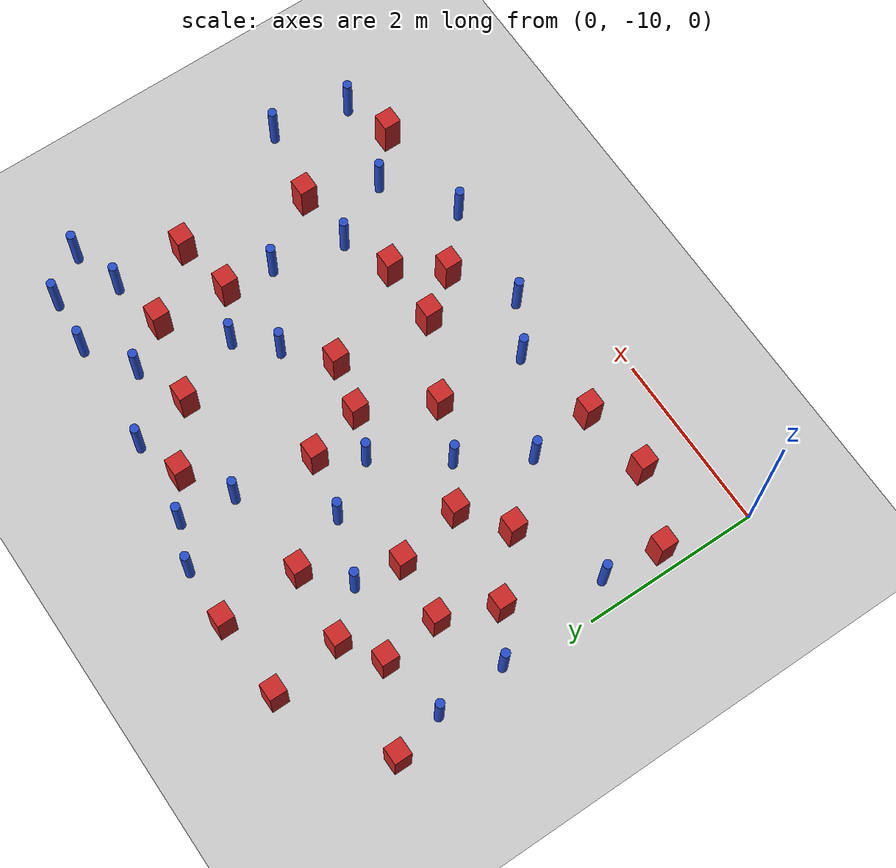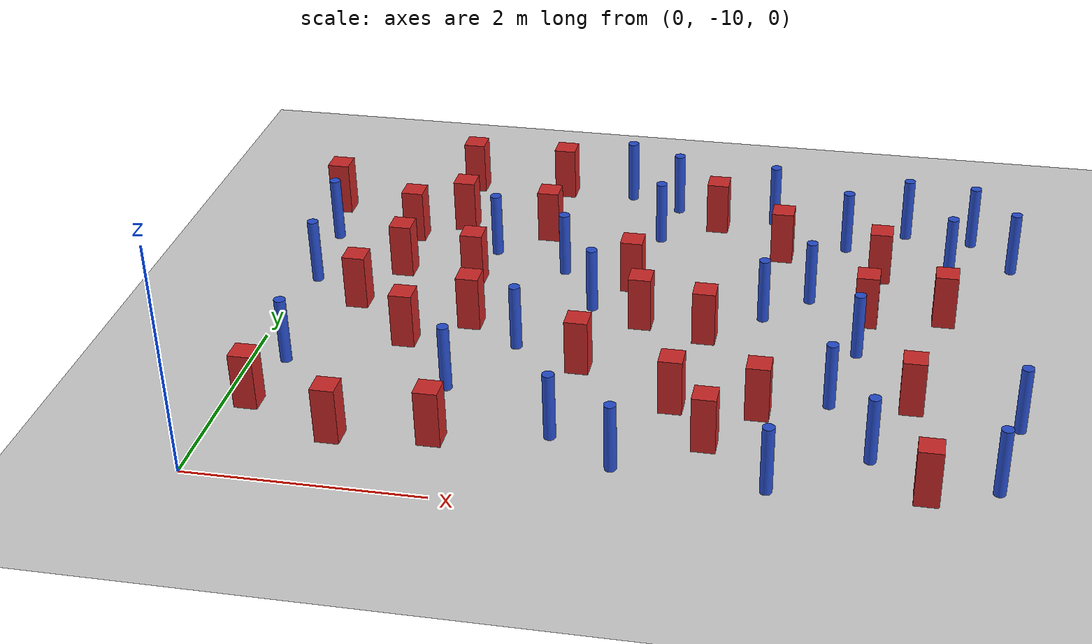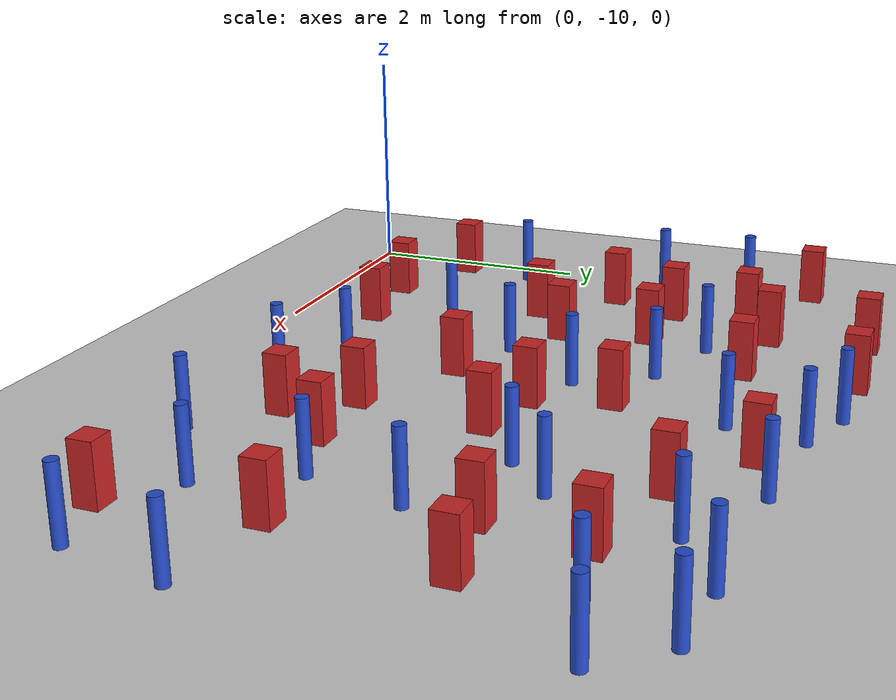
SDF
<sdf version="1.6">
 <world name="default">
  <model name="ground_plane">
   <static>1</static>
   <link name="link">
    <collision name="collision">
     <geometry><plane><normal>0 0 1</normal><size>100 100</size></plane></geometry>
     <surface><friction><ode><mu>100</mu><mu2>50</mu2></ode></friction></surface>
    </collision>
    <visual name="visual">
     <cast_shadows>0</cast_shadows>
     <geometry><plane><normal>0 0 1</normal><size>100 100</size></plane></geometry>
     <material>
      <ambient>1.0 1.0 1.0 1.0</ambient>
      <diffuse>0.8 0.8 0.8 1.0</diffuse>
      <specular>0.01 0.01 0.01 1.000000</specular>
     </material>
    </visual>
   </link>
  </model>
  <model name="pole_obstacle4">
   <static>true</static>
   <pose>2.17905710178 -7.80238165837 7.38925637345e-09 -8.47170692798e-08 1.24976765033e-08 -1.74513093019e-07</pose>
   <link name="link">
    <pose>0 0 0.3 0 -0 0</pose>
    <inertial>
     <mass>1</mass>
     <inertia><ixx>0.145833</ixx><ixy>0</ixy><ixz>0</ixz><iyy>0.145833</iyy><iyz>0</iyz><izz>0.125</izz></inertia>
    </inertial>
    <collision name="collision">
     <geometry><cylinder><radius>0.05</radius><length>.6</length></cylinder></geometry>
    </collision>
    <visual name="visual">
     <geometry><cylinder><radius>0.05</radius><length>.6</length></cylinder></geometry>
     <material>
      <script><name>Gazebo/Blue</name><uri>file://media/materials/scripts/gazebo.material</uri></script>
     </material>
    </visual>
   </link>
  </model>
  <model name="square_post_obstacle4">
   <static>true</static>
   <pose>-0.0634980253902 -5.59062837744 1.91545236811e-07 -7.35059704564e-06 1.12565212e-07 2.39332434364e-05</pose>
   <link name="link">
    <pose>0 0 0.25 0 -0 0</pose>
    <inertial>
     <mass>100</mass>
     <inertia>
      <ixx>0.166667</ixx>
      <ixy>0</ixy>
      <ixz>0</ixz>
      <iyy>0.166667</iyy>
      <iyz>0</iyz>
      <izz>0.166667</izz>
     </inertia>
    </inertial>
    <collision name="collision"><geometry><box><size>.2 .2 .5</size></box></geometry></collision>
    <visual name="visual">
     <geometry><box><size>.2 .2 .5</size></box></geometry>
     <material>
      <script><name>Gazebo/Red</name><uri>file://media/materials/scripts/gazebo.material</uri></script>
     </material>
    </visual>
   </link>
  </model>
  <model name="square_post_obstacle9">
   <static>true</static>
   <pose>1.21343042922 -7.86855493327 1.91545236811e-07 -7.35059704564e-06 1.12565212e-07 2.39332434364e-05</pose>
   <link name="link">
    <pose>0 0 0.25 0 -0 0</pose>
    <inertial>
     <mass>100</mass>
     <inertia>
      <ixx>0.166667</ixx>
      <ixy>0</ixy>
      <ixz>0</ixz>
      <iyy>0.166667</iyy>
      <iyz>0</iyz>
      <izz>0.166667</izz>
     </inertia>
    </inertial>
    <collision name="collision"><geometry><box><size>.2 .2 .5</size></box></geometry></collision>
    <visual name="visual">
     <geometry><box><size>.2 .2 .5</size></box></geometry>
     <material>
      <script><name>Gazebo/Red</name><uri>file://media/materials/scripts/gazebo.material</uri></script>
     </material>
    </visual>
   </link>
  </model>
  <model name="square_post_obstacle11">
   <static>true</static>
   <pose>5.72869029466 -9.37958939106 1.91545236811e-07 -7.35059704564e-06 1.12565212e-07 2.39332434364e-05</pose>
   <link name="link">
    <pose>0 0 0.25 0 -0 0</pose>
    <inertial>
     <mass>100</mass>
     <inertia>
      <ixx>0.166667</ixx>
      <ixy>0</ixy>
      <ixz>0</ixz>
      <iyy>0.166667</iyy>
      <iyz>0</iyz>
      <izz>0.166667</izz>
     </inertia>
    </inertial>
    <collision name="collision"><geometry><box><size>.2 .2 .5</size></box></geometry></collision>
    <visual name="visual">
     <geometry><box><size>.2 .2 .5</size></box></geometry>
     <material>
      <script><name>Gazebo/Red</name><uri>file://media/materials/scripts/gazebo.material</uri></script>
     </material>
    </visual>
   </link>
  </model>
  <model name="square_post_obstacle16">
   <static>true</static>
   <pose>1.12806214713 -4.9336399356 1.91545236811e-07 -7.35059704564e-06 1.12565212e-07 2.39332434364e-05</pose>
   <link name="link">
    <pose>0 0 0.25 0 -0 0</pose>
    <inertial>
     <mass>100</mass>
     <inertia>
      <ixx>0.166667</ixx>
      <ixy>0</ixy>
      <ixz>0</ixz>
      <iyy>0.166667</iyy>
      <iyz>0</iyz>
      <izz>0.166667</izz>
     </inertia>
    </inertial>
    <collision name="collision"><geometry><box><size>.2 .2 .5</size></box></geometry></collision>
    <visual name="visual">
     <geometry><box><size>.2 .2 .5</size></box></geometry>
     <material>
      <script><name>Gazebo/Red</name><uri>file://media/materials/scripts/gazebo.material</uri></script>
     </material>
    </visual>
   </link>
  </model>
  <model name="pole_obstacle20">
   <static>true</static>
   <pose>4.86544363563 -5.62116571292 7.38925637345e-09 -8.47170692796e-08 1.24976764786e-08 -1.74513093032e-07</pose>
   <link name="link">
    <pose>0 0 0.3 0 -0 0</pose>
    <inertial>
     <mass>1</mass>
     <inertia><ixx>0.145833</ixx><ixy>0</ixy><ixz>0</ixz><iyy>0.145833</iyy><iyz>0</iyz><izz>0.125</izz></inertia>
    </inertial>
    <collision name="collision">
     <geometry><cylinder><radius>0.05</radius><length>.6</length></cylinder></geometry>
    </collision>
    <visual name="visual">
     <geometry><cylinder><radius>0.05</radius><length>.6</length></cylinder></geometry>
     <material>
      <script><name>Gazebo/Blue</name><uri>file://media/materials/scripts/gazebo.material</uri></script>
     </material>
    </visual>
   </link>
  </model>
  <model name="pole_obstacle31">
   <static>true</static>
   <pose>4.22559400937 -7.00019617962 7.38925637345e-09 -8.47170692796e-08 1.24976764786e-08 -1.74513093032e-07</pose>
   <link name="link">
    <pose>0 0 0.3 0 -0 0</pose>
    <inertial>
     <mass>1</mass>
     <inertia><ixx>0.145833</ixx><ixy>0</ixy><ixz>0</ixz><iyy>0.145833</iyy><iyz>0</iyz><izz>0.125</izz></inertia>
    </inertial>
    <collision name="collision">
     <geometry><cylinder><radius>0.05</radius><length>.6</length></cylinder></geometry>
    </collision>
    <visual name="visual">
     <geometry><cylinder><radius>0.05</radius><length>.6</length></cylinder></geometry>
     <material>
      <script><name>Gazebo/Blue</name><uri>file://media/materials/scripts/gazebo.material</uri></script>
     </material>
    </visual>
   </link>
  </model>
  <model name="square_post_obstacle25">
   <static>true</static>
   <pose>1.01620777699 -9.35179868776 1.91545236811e-07 -7.35059704564e-06 1.12565212e-07 2.39332434364e-05</pose>
   <link name="link">
    <pose>0 0 0.25 0 -0 0</pose>
    <inertial>
     <mass>100</mass>
     <inertia>
      <ixx>0.166667</ixx>
      <ixy>0</ixy>
      <ixz>0</ixz>
      <iyy>0.166667</iyy>
      <iyz>0</iyz>
      <izz>0.166667</izz>
     </inertia>
    </inertial>
    <collision name="collision"><geometry><box><size>.2 .2 .5</size></box></geometry></collision>
    <visual name="visual">
     <geometry><box><size>.2 .2 .5</size></box></geometry>
     <material>
      <script><name>Gazebo/Red</name><uri>file://media/materials/scripts/gazebo.material</uri></script>
     </material>
    </visual>
   </link>
  </model>
  <model name="square_post_obstacle26">
   <static>true</static>
   <pose>3.61974768404 -5.38686294862 1.91545236811e-07 -7.35059704564e-06 1.12565212e-07 2.39332434364e-05</pose>
   <link name="link">
    <pose>0 0 0.25 0 -0 0</pose>
    <inertial>
     <mass>100</mass>
     <inertia>
      <ixx>0.166667</ixx>
      <ixy>0</ixy>
      <ixz>0</ixz>
      <iyy>0.166667</iyy>
      <iyz>0</iyz>
      <izz>0.166667</izz>
     </inertia>
    </inertial>
    <collision name="collision"><geometry><box><size>.2 .2 .5</size></box></geometry></collision>
    <visual name="visual">
     <geometry><box><size>.2 .2 .5</size></box></geometry>
     <material>
      <script><name>Gazebo/Red</name><uri>file://media/materials/scripts/gazebo.material</uri></script>
     </material>
    </visual>
   </link>
  </model>
  <model name="square_post_obstacle27">
   <static>true</static>
   <pose>4.34222742263 -8.47421205143 1.91545236811e-07 -7.35059704564e-06 1.12565212e-07 2.39332434364e-05</pose>
   <link name="link">
    <pose>0 0 0.25 0 -0 0</pose>
    <inertial>
     <mass>100</mass>
     <inertia>
      <ixx>0.166667</ixx>
      <ixy>0</ixy>
      <ixz>0</ixz>
      <iyy>0.166667</iyy>
      <iyz>0</iyz>
      <izz>0.166667</izz>
     </inertia>
    </inertial>
    <collision name="collision"><geometry><box><size>.2 .2 .5</size></box></geometry></collision>
    <visual name="visual">
     <geometry><box><size>.2 .2 .5</size></box></geometry>
     <material>
      <script><name>Gazebo/Red</name><uri>file://media/materials/scripts/gazebo.material</uri></script>
     </material>
    </visual>
   </link>
  </model>
  <model name="pole_obstacle39">
   <static>true</static>
   <pose>5.41208667493 -5.27517613831 7.38925637345e-09 -8.47170692796e-08 1.24976764786e-08 -1.74513093032e-07</pose>
   <link name="link">
    <pose>0 0 0.3 0 -0 0</pose>
    <inertial>
     <mass>1</mass>
     <inertia><ixx>0.145833</ixx><ixy>0</ixy><ixz>0</ixz><iyy>0.145833</iyy><iyz>0</iyz><izz>0.125</izz></inertia>
    </inertial>
    <collision name="collision">
     <geometry><cylinder><radius>0.05</radius><length>.6</length></cylinder></geometry>
    </collision>
    <visual name="visual">
     <geometry><cylinder><radius>0.05</radius><length>.6</length></cylinder></geometry>
     <material>
      <script><name>Gazebo/Blue</name><uri>file://media/materials/scripts/gazebo.material</uri></script>
     </material>
    </visual>
   </link>
  </model>
  <model name="square_post_obstacle32">
   <static>true</static>
   <pose>5.12506479196 -6.89871429417 1.91545236811e-07 -7.35059704564e-06 1.12565212e-07 2.39332434364e-05</pose>
   <link name="link">
    <pose>0 0 0.25 0 -0 0</pose>
    <inertial>
     <mass>100</mass>
     <inertia>
      <ixx>0.166667</ixx>
      <ixy>0</ixy>
      <ixz>0</ixz>
      <iyy>0.166667</iyy>
      <iyz>0</iyz>
      <izz>0.166667</izz>
     </inertia>
    </inertial>
    <collision name="collision"><geometry><box><size>.2 .2 .5</size></box></geometry></collision>
    <visual name="visual">
     <geometry><box><size>.2 .2 .5</size></box></geometry>
     <material>
      <script><name>Gazebo/Red</name><uri>file://media/materials/scripts/gazebo.material</uri></script>
     </material>
    </visual>
   </link>
  </model>
  <model name="square_post_obstacle33">
   <static>true</static>
   <pose>3.97420817164 -8.97506370975 1.91545236811e-07 -7.35059704564e-06 1.12565212e-07 2.39332434364e-05</pose>
   <link name="link">
    <pose>0 0 0.25 0 -0 0</pose>
    <inertial>
     <mass>100</mass>
     <inertia>
      <ixx>0.166667</ixx>
      <ixy>0</ixy>
      <ixz>0</ixz>
      <iyy>0.166667</iyy>
      <iyz>0</iyz>
      <izz>0.166667</izz>
     </inertia>
    </inertial>
    <collision name="collision"><geometry><box><size>.2 .2 .5</size></box></geometry></collision>
    <visual name="visual">
     <geometry><box><size>.2 .2 .5</size></box></geometry>
     <material>
      <script><name>Gazebo/Red</name><uri>file://media/materials/scripts/gazebo.material</uri></script>
     </material>
    </visual>
   </link>
  </model>
  <model name="pole_obstacle43">
   <static>true</static>
   <pose>2.7108346664 -4.915645997 7.38925637345e-09 -8.47170692798e-08 1.24976765033e-08 -1.74513093019e-07</pose>
   <link name="link">
    <pose>0 0 0.3 0 -0 0</pose>
    <inertial>
     <mass>1</mass>
     <inertia><ixx>0.145833</ixx><ixy>0</ixy><ixz>0</ixz><iyy>0.145833</iyy><iyz>0</iyz><izz>0.125</izz></inertia>
    </inertial>
    <collision name="collision">
     <geometry><cylinder><radius>0.05</radius><length>.6</length></cylinder></geometry>
    </collision>
    <visual name="visual">
     <geometry><cylinder><radius>0.05</radius><length>.6</length></cylinder></geometry>
     <material>
      <script><name>Gazebo/Blue</name><uri>file://media/materials/scripts/gazebo.material</uri></script>
     </material>
    </visual>
   </link>
  </model>
  <model name="square_post_obstacle35">
   <static>true</static>
   <pose>0.624421580094 -7.30827846608 1.91545236811e-07 -7.35059704564e-06 1.12565212e-07 2.39332434364e-05</pose>
   <link name="link">
    <pose>0 0 0.25 0 -0 0</pose>
    <inertial>
     <mass>100</mass>
     <inertia>
      <ixx>0.166667</ixx>
      <ixy>0</ixy>
      <ixz>0</ixz>
      <iyy>0.166667</iyy>
      <iyz>0</iyz>
      <izz>0.166667</izz>
     </inertia>
    </inertial>
    <collision name="collision"><geometry><box><size>.2 .2 .5</size></box></geometry></collision>
    <visual name="visual">
     <geometry><box><size>.2 .2 .5</size></box></geometry>
     <material>
      <script><name>Gazebo/Red</name><uri>file://media/materials/scripts/gazebo.material</uri></script>
     </material>
    </visual>
   </link>
  </model>
  <model name="square_post_obstacle38">
   <static>true</static>
   <pose>1.82145117367 -9.25796622274 1.91545236811e-07 -7.35059704564e-06 1.12565212e-07 2.39332434364e-05</pose>
   <link name="link">
    <pose>0 0 0.25 0 -0 0</pose>
    <inertial>
     <mass>100</mass>
     <inertia>
      <ixx>0.166667</ixx>
      <ixy>0</ixy>
      <ixz>0</ixz>
      <iyy>0.166667</iyy>
      <iyz>0</iyz>
      <izz>0.166667</izz>
     </inertia>
    </inertial>
    <collision name="collision"><geometry><box><size>.2 .2 .5</size></box></geometry></collision>
    <visual name="visual">
     <geometry><box><size>.2 .2 .5</size></box></geometry>
     <material>
      <script><name>Gazebo/Red</name><uri>file://media/materials/scripts/gazebo.material</uri></script>
     </material>
    </visual>
   </link>
  </model>
  <model name="pole_obstacle60">
   <static>true</static>
   <pose>4.14528140078 -5.20682752417 7.38925637345e-09 -8.47170692796e-08 1.24976764786e-08 -1.74513093032e-07</pose>
   <link name="link">
    <pose>0 0 0.3 0 -0 0</pose>
    <inertial>
     <mass>1</mass>
     <inertia><ixx>0.145833</ixx><ixy>0</ixy><ixz>0</ixz><iyy>0.145833</iyy><iyz>0</iyz><izz>0.125</izz></inertia>
    </inertial>
    <collision name="collision">
     <geometry><cylinder><radius>0.05</radius><length>.6</length></cylinder></geometry>
    </collision>
    <visual name="visual">
     <geometry><cylinder><radius>0.05</radius><length>.6</length></cylinder></geometry>
     <material>
      <script><name>Gazebo/Blue</name><uri>file://media/materials/scripts/gazebo.material</uri></script>
     </material>
    </visual>
   </link>
  </model>
  <model name="square_post_obstacle47">
   <static>true</static>
   <pose>5.19968121913 -6.0992076435 1.91545236811e-07 -7.35059704564e-06 1.12565212e-07 2.39332434364e-05</pose>
   <link name="link">
    <pose>0 0 0.25 0 -0 0</pose>
    <inertial>
     <mass>100</mass>
     <inertia>
      <ixx>0.166667</ixx>
      <ixy>0</ixy>
      <ixz>0</ixz>
      <iyy>0.166667</iyy>
      <iyz>0</iyz>
      <izz>0.166667</izz>
     </inertia>
    </inertial>
    <collision name="collision"><geometry><box><size>.2 .2 .5</size></box></geometry></collision>
    <visual name="visual">
     <geometry><box><size>.2 .2 .5</size></box></geometry>
     <material>
      <script><name>Gazebo/Red</name><uri>file://media/materials/scripts/gazebo.material</uri></script>
     </material>
    </visual>
   </link>
  </model>
  <model name="pole_obstacle66">
   <static>true</static>
   <pose>1.63704663686 -6.21766297993 7.38925637345e-09 -8.47170692799e-08 1.24976765033e-08 -1.74513093018e-07</pose>
   <link name="link">
    <pose>0 0 0.3 0 -0 0</pose>
    <inertial>
     <mass>1</mass>
     <inertia><ixx>0.145833</ixx><ixy>0</ixy><ixz>0</ixz><iyy>0.145833</iyy><iyz>0</iyz><izz>0.125</izz></inertia>
    </inertial>
    <collision name="collision">
     <geometry><cylinder><radius>0.05</radius><length>.6</length></cylinder></geometry>
    </collision>
    <visual name="visual">
     <geometry><cylinder><radius>0.05</radius><length>.6</length></cylinder></geometry>
     <material>
      <script><name>Gazebo/Blue</name><uri>file://media/materials/scripts/gazebo.material</uri></script>
     </material>
    </visual>
   </link>
  </model>
  <model name="square_post_obstacle51">
   <static>true</static>
   <pose>3.17740718756 -7.25710388769 1.91545236811e-07 -7.35059704564e-06 1.12565212e-07 2.39332434364e-05</pose>
   <link name="link">
    <pose>0 0 0.25 0 -0 0</pose>
    <inertial>
     <mass>100</mass>
     <inertia>
      <ixx>0.166667</ixx>
      <ixy>0</ixy>
      <ixz>0</ixz>
      <iyy>0.166667</iyy>
      <iyz>0</iyz>
      <izz>0.166667</izz>
     </inertia>
    </inertial>
    <collision name="collision"><geometry><box><size>.2 .2 .5</size></box></geometry></collision>
    <visual name="visual">
     <geometry><box><size>.2 .2 .5</size></box></geometry>
     <material>
      <script><name>Gazebo/Red</name><uri>file://media/materials/scripts/gazebo.material</uri></script>
     </material>
    </visual>
   </link>
  </model>
  <model name="square_post_obstacle60">
   <static>true</static>
   <pose>2.77267028174 -8.04138694014 1.91545236811e-07 -7.35059704564e-06 1.12565212e-07 2.39332434364e-05</pose>
   <link name="link">
    <pose>0 0 0.25 0 -0 0</pose>
    <inertial>
     <mass>100</mass>
     <inertia>
      <ixx>0.166667</ixx>
      <ixy>0</ixy>
      <ixz>0</ixz>
      <iyy>0.166667</iyy>
      <iyz>0</iyz>
      <izz>0.166667</izz>
     </inertia>
    </inertial>
    <collision name="collision"><geometry><box><size>.2 .2 .5</size></box></geometry></collision>
    <visual name="visual">
     <geometry><box><size>.2 .2 .5</size></box></geometry>
     <material>
      <script><name>Gazebo/Red</name><uri>file://media/materials/scripts/gazebo.material</uri></script>
     </material>
    </visual>
   </link>
  </model>
  <model name="square_post_obstacle64">
   <static>true</static>
   <pose>1.23109935558 -5.75033798999 1.91545236811e-07 -7.35059704564e-06 1.12565212e-07 2.39332434364e-05</pose>
   <link name="link">
    <pose>0 0 0.25 0 -0 0</pose>
    <inertial>
     <mass>100</mass>
     <inertia>
      <ixx>0.166667</ixx>
      <ixy>0</ixy>
      <ixz>0</ixz>
      <iyy>0.166667</iyy>
      <iyz>0</iyz>
      <izz>0.166667</izz>
     </inertia>
    </inertial>
    <collision name="collision"><geometry><box><size>.2 .2 .5</size></box></geometry></collision>
    <visual name="visual">
     <geometry><box><size>.2 .2 .5</size></box></geometry>
     <material>
      <script><name>Gazebo/Red</name><uri>file://media/materials/scripts/gazebo.material</uri></script>
     </material>
    </visual>
   </link>
  </model>
  <model name="square_post_obstacle69">
   <static>true</static>
   <pose>3.75956227613 -7.40032604926 1.91545236811e-07 -7.35059704564e-06 1.12565212e-07 2.39332434364e-05</pose>
   <link name="link">
    <pose>0 0 0.25 0 -0 0</pose>
    <inertial>
     <mass>100</mass>
     <inertia>
      <ixx>0.166667</ixx>
      <ixy>0</ixy>
      <ixz>0</ixz>
      <iyy>0.166667</iyy>
      <iyz>0</iyz>
      <izz>0.166667</izz>
     </inertia>
    </inertial>
    <collision name="collision"><geometry><box><size>.2 .2 .5</size></box></geometry></collision>
    <visual name="visual">
     <geometry><box><size>.2 .2 .5</size></box></geometry>
     <material>
      <script><name>Gazebo/Red</name><uri>file://media/materials/scripts/gazebo.material</uri></script>
     </material>
    </visual>
   </link>
  </model>
  <model name="pole_obstacle82">
   <static>true</static>
   <pose>4.60605791709 -6.62294176688 7.38925637345e-09 -8.47170692796e-08 1.24976764786e-08 -1.74513093032e-07</pose>
   <link name="link">
    <pose>0 0 0.3 0 -0 0</pose>
    <inertial>
     <mass>1</mass>
     <inertia><ixx>0.145833</ixx><ixy>0</ixy><ixz>0</ixz><iyy>0.145833</iyy><iyz>0</iyz><izz>0.125</izz></inertia>
    </inertial>
    <collision name="collision">
     <geometry><cylinder><radius>0.05</radius><length>.6</length></cylinder></geometry>
    </collision>
    <visual name="visual">
     <geometry><cylinder><radius>0.05</radius><length>.6</length></cylinder></geometry>
     <material>
      <script><name>Gazebo/Blue</name><uri>file://media/materials/scripts/gazebo.material</uri></script>
     </material>
    </visual>
   </link>
  </model>
  <model name="pole_obstacle83">
   <static>true</static>
   <pose>5.82689184606 -5.9615396565 7.38925637345e-09 -8.47170692796e-08 1.24976764786e-08 -1.74513093032e-07</pose>
   <link name="link">
    <pose>0 0 0.3 0 -0 0</pose>
    <inertial>
     <mass>1</mass>
     <inertia><ixx>0.145833</ixx><ixy>0</ixy><ixz>0</ixz><iyy>0.145833</iyy><iyz>0</iyz><izz>0.125</izz></inertia>
    </inertial>
    <collision name="collision">
     <geometry><cylinder><radius>0.05</radius><length>.6</length></cylinder></geometry>
    </collision>
    <visual name="visual">
     <geometry><cylinder><radius>0.05</radius><length>.6</length></cylinder></geometry>
     <material>
      <script><name>Gazebo/Blue</name><uri>file://media/materials/scripts/gazebo.material</uri></script>
     </material>
    </visual>
   </link>
  </model>
  <model name="square_post_obstacle73">
   <static>true</static>
   <pose>5.57152920492 -8.18730051333 1.91545236811e-07 -7.35059704564e-06 1.12565212e-07 2.39332434364e-05</pose>
   <link name="link">
    <pose>0 0 0.25 0 -0 0</pose>
    <inertial>
     <mass>100</mass>
     <inertia>
      <ixx>0.166667</ixx>
      <ixy>0</ixy>
      <ixz>0</ixz>
      <iyy>0.166667</iyy>
      <iyz>0</iyz>
      <izz>0.166667</izz>
     </inertia>
    </inertial>
    <collision name="collision"><geometry><box><size>.2 .2 .5</size></box></geometry></collision>
    <visual name="visual">
     <geometry><box><size>.2 .2 .5</size></box></geometry>
     <material>
      <script><name>Gazebo/Red</name><uri>file://media/materials/scripts/gazebo.material</uri></script>
     </material>
    </visual>
   </link>
  </model>
  <model name="pole_obstacle88">
   <static>true</static>
   <pose>6.02548682874 -5.32940468239 7.38925637345e-09 -8.47170692796e-08 1.24976764786e-08 -1.74513093032e-07</pose>
   <link name="link">
    <pose>0 0 0.3 0 -0 0</pose>
    <inertial>
     <mass>1</mass>
     <inertia><ixx>0.145833</ixx><ixy>0</ixy><ixz>0</ixz><iyy>0.145833</iyy><iyz>0</iyz><izz>0.125</izz></inertia>
    </inertial>
    <collision name="collision">
     <geometry><cylinder><radius>0.05</radius><length>.6</length></cylinder></geometry>
    </collision>
    <visual name="visual">
     <geometry><cylinder><radius>0.05</radius><length>.6</length></cylinder></geometry>
     <material>
      <script><name>Gazebo/Blue</name><uri>file://media/materials/scripts/gazebo.material</uri></script>
     </material>
    </visual>
   </link>
  </model>
  <model name="square_post_obstacle78">
   <static>true</static>
   <pose>2.06235913138 -5.82058998243 1.91545236811e-07 -7.35059704564e-06 1.12565212e-07 2.39332434364e-05</pose>
   <link name="link">
    <pose>0 0 0.25 0 -0 0</pose>
    <inertial>
     <mass>100</mass>
     <inertia>
      <ixx>0.166667</ixx>
      <ixy>0</ixy>
      <ixz>0</ixz>
      <iyy>0.166667</iyy>
      <iyz>0</iyz>
      <izz>0.166667</izz>
     </inertia>
    </inertial>
    <collision name="collision"><geometry><box><size>.2 .2 .5</size></box></geometry></collision>
    <visual name="visual">
     <geometry><box><size>.2 .2 .5</size></box></geometry>
     <material>
      <script><name>Gazebo/Red</name><uri>file://media/materials/scripts/gazebo.material</uri></script>
     </material>
    </visual>
   </link>
  </model>
  <model name="pole_obstacle90">
   <static>true</static>
   <pose>2.74445235166 -9.06895485339 7.38925637345e-09 -8.47170692793e-08 1.24976764408e-08 -1.74513093041e-07</pose>
   <link name="link">
    <pose>0 0 0.3 0 -0 0</pose>
    <inertial>
     <mass>1</mass>
     <inertia><ixx>0.145833</ixx><ixy>0</ixy><ixz>0</ixz><iyy>0.145833</iyy><iyz>0</iyz><izz>0.125</izz></inertia>
    </inertial>
    <collision name="collision">
     <geometry><cylinder><radius>0.05</radius><length>.6</length></cylinder></geometry>
    </collision>
    <visual name="visual">
     <geometry><cylinder><radius>0.05</radius><length>.6</length></cylinder></geometry>
     <material>
      <script><name>Gazebo/Blue</name><uri>file://media/materials/scripts/gazebo.material</uri></script>
     </material>
    </visual>
   </link>
  </model>
  <model name="pole_obstacle91">
   <static>true</static>
   <pose>5.07881089389 -7.4511106117 7.38925637345e-09 -8.47170692796e-08 1.24976764786e-08 -1.74513093032e-07</pose>
   <link name="link">
    <pose>0 0 0.3 0 -0 0</pose>
    <inertial>
     <mass>1</mass>
     <inertia><ixx>0.145833</ixx><ixy>0</ixy><ixz>0</ixz><iyy>0.145833</iyy><iyz>0</iyz><izz>0.125</izz></inertia>
    </inertial>
    <collision name="collision">
     <geometry><cylinder><radius>0.05</radius><length>.6</length></cylinder></geometry>
    </collision>
    <visual name="visual">
     <geometry><cylinder><radius>0.05</radius><length>.6</length></cylinder></geometry>
     <material>
      <script><name>Gazebo/Blue</name><uri>file://media/materials/scripts/gazebo.material</uri></script>
     </material>
    </visual>
   </link>
  </model>
  <model name="square_post_obstacle91">
   <static>true</static>
   <pose>5.7993565062 -6.7764674556 1.91545236811e-07 -7.35059704564e-06 1.12565212e-07 2.39332434364e-05</pose>
   <link name="link">
    <pose>0 0 0.25 0 -0 0</pose>
    <inertial>
     <mass>100</mass>
     <inertia>
      <ixx>0.166667</ixx>
      <ixy>0</ixy>
      <ixz>0</ixz>
      <iyy>0.166667</iyy>
      <iyz>0</iyz>
      <izz>0.166667</izz>
     </inertia>
    </inertial>
    <collision name="collision"><geometry><box><size>.2 .2 .5</size></box></geometry></collision>
    <visual name="visual">
     <geometry><box><size>.2 .2 .5</size></box></geometry>
     <material>
      <script><name>Gazebo/Red</name><uri>file://media/materials/scripts/gazebo.material</uri></script>
     </material>
    </visual>
   </link>
  </model>
  <model name="square_post_obstacle100">
   <static>true</static>
   <pose>2.99751460451 -6.6310093789 1.91545236811e-07 -7.35059704564e-06 1.12565212e-07 2.39332434364e-05</pose>
   <link name="link">
    <pose>0 0 0.25 0 -0 0</pose>
    <inertial>
     <mass>100</mass>
     <inertia>
      <ixx>0.166667</ixx>
      <ixy>0</ixy>
      <ixz>0</ixz>
      <iyy>0.166667</iyy>
      <iyz>0</iyz>
      <izz>0.166667</izz>
     </inertia>
    </inertial>
    <collision name="collision"><geometry><box><size>.2 .2 .5</size></box></geometry></collision>
    <visual name="visual">
     <geometry><box><size>.2 .2 .5</size></box></geometry>
     <material>
      <script><name>Gazebo/Red</name><uri>file://media/materials/scripts/gazebo.material</uri></script>
     </material>
    </visual>
   </link>
  </model>
  <model name="square_post_obstacle107">
   <static>true</static>
   <pose>0.870773619901 -6.6902454024 1.91545236811e-07 -7.35059704564e-06 1.12565212e-07 2.39332434364e-05</pose>
   <link name="link">
    <pose>0 0 0.25 0 -0 0</pose>
    <inertial>
     <mass>100</mass>
     <inertia>
      <ixx>0.166667</ixx>
      <ixy>0</ixy>
      <ixz>0</ixz>
      <iyy>0.166667</iyy>
      <iyz>0</iyz>
      <izz>0.166667</izz>
     </inertia>
    </inertial>
    <collision name="collision"><geometry><box><size>.2 .2 .5</size></box></geometry></collision>
    <visual name="visual">
     <geometry><box><size>.2 .2 .5</size></box></geometry>
     <material>
      <script><name>Gazebo/Red</name><uri>file://media/materials/scripts/gazebo.material</uri></script>
     </material>
    </visual>
   </link>
  </model>
  <model name="pole_obstacle126">
   <static>true</static>
   <pose>4.51806785143 -9.48961550583 7.38925637345e-09 -8.471706928e-08 1.24976765081e-08 -1.74513093015e-07</pose>
   <link name="link">
    <pose>0 0 0.3 0 -0 0</pose>
    <inertial>
     <mass>1</mass>
     <inertia><ixx>0.145833</ixx><ixy>0</ixy><ixz>0</ixz><iyy>0.145833</iyy><iyz>0</iyz><izz>0.125</izz></inertia>
    </inertial>
    <collision name="collision">
     <geometry><cylinder><radius>0.05</radius><length>.6</length></cylinder></geometry>
    </collision>
    <visual name="visual">
     <geometry><cylinder><radius>0.05</radius><length>.6</length></cylinder></geometry>
     <material>
      <script><name>Gazebo/Blue</name><uri>file://media/materials/scripts/gazebo.material</uri></script>
     </material>
    </visual>
   </link>
  </model>
  <model name="square_post_obstacle122">
   <static>true</static>
   <pose>1.70396663844 -7.49650935497 1.91545236811e-07 -7.35059704564e-06 1.12565212e-07 2.39332434364e-05</pose>
   <link name="link">
    <pose>0 0 0.25 0 -0 0</pose>
    <inertial>
     <mass>100</mass>
     <inertia>
      <ixx>0.166667</ixx>
      <ixy>0</ixy>
      <ixz>0</ixz>
      <iyy>0.166667</iyy>
      <iyz>0</iyz>
      <izz>0.166667</izz>
     </inertia>
    </inertial>
    <collision name="collision"><geometry><box><size>.2 .2 .5</size></box></geometry></collision>
    <visual name="visual">
     <geometry><box><size>.2 .2 .5</size></box></geometry>
     <material>
      <script><name>Gazebo/Red</name><uri>file://media/materials/scripts/gazebo.material</uri></script>
     </material>
    </visual>
   </link>
  </model>
  <model name="pole_obstacle129">
   <static>true</static>
   <pose>4.90540934447 -8.25985730588 7.38925637345e-09 -8.471706928e-08 1.24976765081e-08 -1.74513093015e-07</pose>
   <link name="link">
    <pose>0 0 0.3 0 -0 0</pose>
    <inertial>
     <mass>1</mass>
     <inertia><ixx>0.145833</ixx><ixy>0</ixy><ixz>0</ixz><iyy>0.145833</iyy><iyz>0</iyz><izz>0.125</izz></inertia>
    </inertial>
    <collision name="collision">
     <geometry><cylinder><radius>0.05</radius><length>.6</length></cylinder></geometry>
    </collision>
    <visual name="visual">
     <geometry><cylinder><radius>0.05</radius><length>.6</length></cylinder></geometry>
     <material>
      <script><name>Gazebo/Blue</name><uri>file://media/materials/scripts/gazebo.material</uri></script>
     </material>
    </visual>
   </link>
  </model>
  <model name="pole_obstacle136">
   <static>true</static>
   <pose>6.27670788219 -9.21712657109 7.38925637345e-09 -8.471706928e-08 1.24976765081e-08 -1.74513093015e-07</pose>
   <link name="link">
    <pose>0 0 0.3 0 -0 0</pose>
    <inertial>
     <mass>1</mass>
     <inertia><ixx>0.145833</ixx><ixy>0</ixy><ixz>0</ixz><iyy>0.145833</iyy><iyz>0</iyz><izz>0.125</izz></inertia>
    </inertial>
    <collision name="collision">
     <geometry><cylinder><radius>0.05</radius><length>.6</length></cylinder></geometry>
    </collision>
    <visual name="visual">
     <geometry><cylinder><radius>0.05</radius><length>.6</length></cylinder></geometry>
     <material>
      <script><name>Gazebo/Blue</name><uri>file://media/materials/scripts/gazebo.material</uri></script>
     </material>
    </visual>
   </link>
  </model>
  <model name="square_post_obstacle133">
   <static>true</static>
   <pose>2.0377716148 -4.90732363426 1.91545236811e-07 -7.35059704564e-06 1.12565212e-07 2.39332434364e-05</pose>
   <link name="link">
    <pose>0 0 0.25 0 -0 0</pose>
    <inertial>
     <mass>100</mass>
     <inertia>
      <ixx>0.166667</ixx>
      <ixy>0</ixy>
      <ixz>0</ixz>
      <iyy>0.166667</iyy>
      <iyz>0</iyz>
      <izz>0.166667</izz>
     </inertia>
    </inertial>
    <collision name="collision"><geometry><box><size>.2 .2 .5</size></box></geometry></collision>
    <visual name="visual">
     <geometry><box><size>.2 .2 .5</size></box></geometry>
     <material>
      <script><name>Gazebo/Red</name><uri>file://media/materials/scripts/gazebo.material</uri></script>
     </material>
    </visual>
   </link>
  </model>
  <model name="square_post_obstacle140">
   <static>true</static>
   <pose>0.208664540136 -8.99755718352 1.91545236811e-07 -7.35059704564e-06 1.12565212e-07 2.39332434364e-05</pose>
   <link name="link">
    <pose>0 0 0.25 0 -0 0</pose>
    <inertial>
     <mass>100</mass>
     <inertia>
      <ixx>0.166667</ixx>
      <ixy>0</ixy>
      <ixz>0</ixz>
      <iyy>0.166667</iyy>
      <iyz>0</iyz>
      <izz>0.166667</izz>
     </inertia>
    </inertial>
    <collision name="collision"><geometry><box><size>.2 .2 .5</size></box></geometry></collision>
    <visual name="visual">
     <geometry><box><size>.2 .2 .5</size></box></geometry>
     <material>
      <script><name>Gazebo/Red</name><uri>file://media/materials/scripts/gazebo.material</uri></script>
     </material>
    </visual>
   </link>
  </model>
  <model name="pole_obstacle149">
   <static>true</static>
   <pose>3.11638438869 -5.72248623578 7.38925637345e-09 -8.47170692798e-08 1.24976765033e-08 -1.74513093019e-07</pose>
   <link name="link">
    <pose>0 0 0.3 0 -0 0</pose>
    <inertial>
     <mass>1</mass>
     <inertia><ixx>0.145833</ixx><ixy>0</ixy><ixz>0</ixz><iyy>0.145833</iyy><iyz>0</iyz><izz>0.125</izz></inertia>
    </inertial>
    <collision name="collision">
     <geometry><cylinder><radius>0.05</radius><length>.6</length></cylinder></geometry>
    </collision>
    <visual name="visual">
     <geometry><cylinder><radius>0.05</radius><length>.6</length></cylinder></geometry>
     <material>
      <script><name>Gazebo/Blue</name><uri>file://media/materials/scripts/gazebo.material</uri></script>
     </material>
    </visual>
   </link>
  </model>
  <model name="square_post_obstacle150">
   <static>true</static>
   <pose>0.799242729342 -6.02956932142 1.91545236811e-07 -7.35059704564e-06 1.12565212e-07 2.39332434364e-05</pose>
   <link name="link">
    <pose>0 0 0.25 0 -0 0</pose>
    <inertial>
     <mass>100</mass>
     <inertia>
      <ixx>0.166667</ixx>
      <ixy>0</ixy>
      <ixz>0</ixz>
      <iyy>0.166667</iyy>
      <iyz>0</iyz>
      <izz>0.166667</izz>
     </inertia>
    </inertial>
    <collision name="collision"><geometry><box><size>.2 .2 .5</size></box></geometry></collision>
    <visual name="visual">
     <geometry><box><size>.2 .2 .5</size></box></geometry>
     <material>
      <script><name>Gazebo/Red</name><uri>file://media/materials/scripts/gazebo.material</uri></script>
     </material>
    </visual>
   </link>
  </model>
  <model name="square_post_obstacle151">
   <static>true</static>
   <pose>4.28284657568 -5.86106732233 1.91545236811e-07 -7.35059704564e-06 1.12565212e-07 2.39332434364e-05</pose>
   <link name="link">
    <pose>0 0 0.25 0 -0 0</pose>
    <inertial>
     <mass>100</mass>
     <inertia>
      <ixx>0.166667</ixx>
      <ixy>0</ixy>
      <ixz>0</ixz>
      <iyy>0.166667</iyy>
      <iyz>0</iyz>
      <izz>0.166667</izz>
     </inertia>
    </inertial>
    <collision name="collision"><geometry><box><size>.2 .2 .5</size></box></geometry></collision>
    <visual name="visual">
     <geometry><box><size>.2 .2 .5</size></box></geometry>
     <material>
      <script><name>Gazebo/Red</name><uri>file://media/materials/scripts/gazebo.material</uri></script>
     </material>
    </visual>
   </link>
  </model>
  <model name="pole_obstacle156">
   <static>true</static>
   <pose>5.28034307337 -8.96526784745 7.38925637345e-09 -8.471706928e-08 1.24976765081e-08 -1.74513093015e-07</pose>
   <link name="link">
    <pose>0 0 0.3 0 -0 0</pose>
    <inertial>
     <mass>1</mass>
     <inertia><ixx>0.145833</ixx><ixy>0</ixy><ixz>0</ixz><iyy>0.145833</iyy><iyz>0</iyz><izz>0.125</izz></inertia>
    </inertial>
    <collision name="collision">
     <geometry><cylinder><radius>0.05</radius><length>.6</length></cylinder></geometry>
    </collision>
    <visual name="visual">
     <geometry><cylinder><radius>0.05</radius><length>.6</length></cylinder></geometry>
     <material>
      <script><name>Gazebo/Blue</name><uri>file://media/materials/scripts/gazebo.material</uri></script>
     </material>
    </visual>
   </link>
  </model>
  <model name="pole_obstacle165">
   <static>true</static>
   <pose>2.70389559814 -7.07019402107 7.38925637345e-09 -8.47170692798e-08 1.24976765033e-08 -1.74513093019e-07</pose>
   <link name="link">
    <pose>0 0 0.3 0 -0 0</pose>
    <inertial>
     <mass>1</mass>
     <inertia><ixx>0.145833</ixx><ixy>0</ixy><ixz>0</ixz><iyy>0.145833</iyy><iyz>0</iyz><izz>0.125</izz></inertia>
    </inertial>
    <collision name="collision">
     <geometry><cylinder><radius>0.05</radius><length>.6</length></cylinder></geometry>
    </collision>
    <visual name="visual">
     <geometry><cylinder><radius>0.05</radius><length>.6</length></cylinder></geometry>
     <material>
      <script><name>Gazebo/Blue</name><uri>file://media/materials/scripts/gazebo.material</uri></script>
     </material>
    </visual>
   </link>
  </model>
  <model name="square_post_obstacle162">
   <static>true</static>
   <pose>3.63539011425 -8.49396366795 1.91545236811e-07 -7.35059704564e-06 1.12565212e-07 2.39332434364e-05</pose>
   <link name="link">
    <pose>0 0 0.25 0 -0 0</pose>
    <inertial>
     <mass>100</mass>
     <inertia>
      <ixx>0.166667</ixx>
      <ixy>0</ixy>
      <ixz>0</ixz>
      <iyy>0.166667</iyy>
      <iyz>0</iyz>
      <izz>0.166667</izz>
     </inertia>
    </inertial>
    <collision name="collision"><geometry><box><size>.2 .2 .5</size></box></geometry></collision>
    <visual name="visual">
     <geometry><box><size>.2 .2 .5</size></box></geometry>
     <material>
      <script><name>Gazebo/Red</name><uri>file://media/materials/scripts/gazebo.material</uri></script>
     </material>
    </visual>
   </link>
  </model>
  <model name="pole_obstacle169">
   <static>true</static>
   <pose>2.33803059073 -6.47741244756 7.38925637345e-09 -8.47170692798e-08 1.24976765033e-08 -1.74513093019e-07</pose>
   <link name="link">
    <pose>0 0 0.3 0 -0 0</pose>
    <inertial>
     <mass>1</mass>
     <inertia><ixx>0.145833</ixx><ixy>0</ixy><ixz>0</ixz><iyy>0.145833</iyy><iyz>0</iyz><izz>0.125</izz></inertia>
    </inertial>
    <collision name="collision">
     <geometry><cylinder><radius>0.05</radius><length>.6</length></cylinder></geometry>
    </collision>
    <visual name="visual">
     <geometry><cylinder><radius>0.05</radius><length>.6</length></cylinder></geometry>
     <material>
      <script><name>Gazebo/Blue</name><uri>file://media/materials/scripts/gazebo.material</uri></script>
     </material>
    </visual>
   </link>
  </model>
  <model name="pole_obstacle183">
   <static>true</static>
   <pose>0.0710836354985 -6.17308795851 7.38925637345e-09 -8.47170692798e-08 1.24976765034e-08 -1.74513093019e-07</pose>
   <link name="link">
    <pose>0 0 0.3 0 -0 0</pose>
    <inertial>
     <mass>1</mass>
     <inertia><ixx>0.145833</ixx><ixy>0</ixy><ixz>0</ixz><iyy>0.145833</iyy><iyz>0</iyz><izz>0.125</izz></inertia>
    </inertial>
    <collision name="collision">
     <geometry><cylinder><radius>0.05</radius><length>.6</length></cylinder></geometry>
    </collision>
    <visual name="visual">
     <geometry><cylinder><radius>0.05</radius><length>.6</length></cylinder></geometry>
     <material>
      <script><name>Gazebo/Blue</name><uri>file://media/materials/scripts/gazebo.material</uri></script>
     </material>
    </visual>
   </link>
  </model>
  <model name="pole_obstacle186">
   <static>true</static>
   <pose>0.124076844719 -6.98352394572 7.38925637345e-09 -8.47170692799e-08 1.2497676504e-08 -1.74513093019e-07</pose>
   <link name="link">
    <pose>0 0 0.3 0 -0 0</pose>
    <inertial>
     <mass>1</mass>
     <inertia><ixx>0.145833</ixx><ixy>0</ixy><ixz>0</ixz><iyy>0.145833</iyy><iyz>0</iyz><izz>0.125</izz></inertia>
    </inertial>
    <collision name="collision">
     <geometry><cylinder><radius>0.05</radius><length>.6</length></cylinder></geometry>
    </collision>
    <visual name="visual">
     <geometry><cylinder><radius>0.05</radius><length>.6</length></cylinder></geometry>
     <material>
      <script><name>Gazebo/Blue</name><uri>file://media/materials/scripts/gazebo.material</uri></script>
     </material>
    </visual>
   </link>
  </model>
  <model name="square_post_obstacle189">
   <static>true</static>
   <pose>1.54845829276 -6.74338083023 1.91545236811e-07 -7.35059704564e-06 1.12565212e-07 2.39332434364e-05</pose>
   <link name="link">
    <pose>0 0 0.25 0 -0 0</pose>
    <inertial>
     <mass>100</mass>
     <inertia>
      <ixx>0.166667</ixx>
      <ixy>0</ixy>
      <ixz>0</ixz>
      <iyy>0.166667</iyy>
      <iyz>0</iyz>
      <izz>0.166667</izz>
     </inertia>
    </inertial>
    <collision name="collision"><geometry><box><size>.2 .2 .5</size></box></geometry></collision>
    <visual name="visual">
     <geometry><box><size>.2 .2 .5</size></box></geometry>
     <material>
      <script><name>Gazebo/Red</name><uri>file://media/materials/scripts/gazebo.material</uri></script>
     </material>
    </visual>
   </link>
  </model>
  <model name="pole_obstacle191">
   <static>true</static>
   <pose>1.74823988132 -8.52544701615 7.38925637345e-09 -8.47170692798e-08 1.24976764881e-08 -1.74513093027e-07</pose>
   <link name="link">
    <pose>0 0 0.3 0 -0 0</pose>
    <inertial>
     <mass>1</mass>
     <inertia><ixx>0.145833</ixx><ixy>0</ixy><ixz>0</ixz><iyy>0.145833</iyy><iyz>0</iyz><izz>0.125</izz></inertia>
    </inertial>
    <collision name="collision">
     <geometry><cylinder><radius>0.05</radius><length>.6</length></cylinder></geometry>
    </collision>
    <visual name="visual">
     <geometry><cylinder><radius>0.05</radius><length>.6</length></cylinder></geometry>
     <material>
      <script><name>Gazebo/Blue</name><uri>file://media/materials/scripts/gazebo.material</uri></script>
     </material>
    </visual>
   </link>
  </model>
  <model name="pole_obstacle210">
   <static>true</static>
   <pose>6.44311143576 -8.35085790396 7.38925637345e-09 -8.471706928e-08 1.24976765081e-08 -1.74513093015e-07</pose>
   <link name="link">
    <pose>0 0 0.3 0 -0 0</pose>
    <inertial>
     <mass>1</mass>
     <inertia><ixx>0.145833</ixx><ixy>0</ixy><ixz>0</ixz><iyy>0.145833</iyy><iyz>0</iyz><izz>0.125</izz></inertia>
    </inertial>
    <collision name="collision">
     <geometry><cylinder><radius>0.05</radius><length>.6</length></cylinder></geometry>
    </collision>
    <visual name="visual">
     <geometry><cylinder><radius>0.05</radius><length>.6</length></cylinder></geometry>
     <material>
      <script><name>Gazebo/Blue</name><uri>file://media/materials/scripts/gazebo.material</uri></script>
     </material>
    </visual>
   </link>
  </model>
  <model name="pole_obstacle215">
   <static>true</static>
   <pose>0.292482657852 -8.33960948316 7.38925637345e-09 -8.47170692796e-08 1.24976764696e-08 -1.74513093038e-07</pose>
   <link name="link">
    <pose>0 0 0.3 0 -0 0</pose>
    <inertial>
     <mass>1</mass>
     <inertia><ixx>0.145833</ixx><ixy>0</ixy><ixz>0</ixz><iyy>0.145833</iyy><iyz>0</iyz><izz>0.125</izz></inertia>
    </inertial>
    <collision name="collision">
     <geometry><cylinder><radius>0.05</radius><length>.6</length></cylinder></geometry>
    </collision>
    <visual name="visual">
     <geometry><cylinder><radius>0.05</radius><length>.6</length></cylinder></geometry>
     <material>
      <script><name>Gazebo/Blue</name><uri>file://media/materials/scripts/gazebo.material</uri></script>
     </material>
    </visual>
   </link>
  </model>
  <model name="pole_obstacle216">
   <static>true</static>
   <pose>6.39253174064 -5.78728022558 7.38925637345e-09 -8.47170692796e-08 1.24976764786e-08 -1.74513093032e-07</pose>
   <link name="link">
    <pose>0 0 0.3 0 -0 0</pose>
    <inertial>
     <mass>1</mass>
     <inertia><ixx>0.145833</ixx><ixy>0</ixy><ixz>0</ixz><iyy>0.145833</iyy><iyz>0</iyz><izz>0.125</izz></inertia>
    </inertial>
    <collision name="collision">
     <geometry><cylinder><radius>0.05</radius><length>.6</length></cylinder></geometry>
    </collision>
    <visual name="visual">
     <geometry><cylinder><radius>0.05</radius><length>.6</length></cylinder></geometry>
     <material>
      <script><name>Gazebo/Blue</name><uri>file://media/materials/scripts/gazebo.material</uri></script>
     </material>
    </visual>
   </link>
  </model>
  <model name="pole_obstacle218">
   <static>true</static>
   <pose>3.29669070785 -9.40061101319 7.38925637345e-09 -8.47170692793e-08 1.24976764408e-08 -1.74513093041e-07</pose>
   <link name="link">
    <pose>0 0 0.3 0 -0 0</pose>
    <inertial>
     <mass>1</mass>
     <inertia><ixx>0.145833</ixx><ixy>0</ixy><ixz>0</ixz><iyy>0.145833</iyy><iyz>0</iyz><izz>0.125</izz></inertia>
    </inertial>
    <collision name="collision">
     <geometry><cylinder><radius>0.05</radius><length>.6</length></cylinder></geometry>
    </collision>
    <visual name="visual">
     <geometry><cylinder><radius>0.05</radius><length>.6</length></cylinder></geometry>
     <material>
      <script><name>Gazebo/Blue</name><uri>file://media/materials/scripts/gazebo.material</uri></script>
     </material>
    </visual>
   </link>
  </model>
  <model name="pole_obstacle219">
   <static>true</static>
   <pose>3.20072091849 -5.11129803211 7.38925637345e-09 -8.47170692798e-08 1.24976765033e-08 -1.74513093019e-07</pose>
   <link name="link">
    <pose>0 0 0.3 0 -0 0</pose>
    <inertial>
     <mass>1</mass>
     <inertia><ixx>0.145833</ixx><ixy>0</ixy><ixz>0</ixz><iyy>0.145833</iyy><iyz>0</iyz><izz>0.125</izz></inertia>
    </inertial>
    <collision name="collision">
     <geometry><cylinder><radius>0.05</radius><length>.6</length></cylinder></geometry>
    </collision>
    <visual name="visual">
     <geometry><cylinder><radius>0.05</radius><length>.6</length></cylinder></geometry>
     <material>
      <script><name>Gazebo/Blue</name><uri>file://media/materials/scripts/gazebo.material</uri></script>
     </material>
    </visual>
   </link>
  </model>
 </world>
</sdf>
